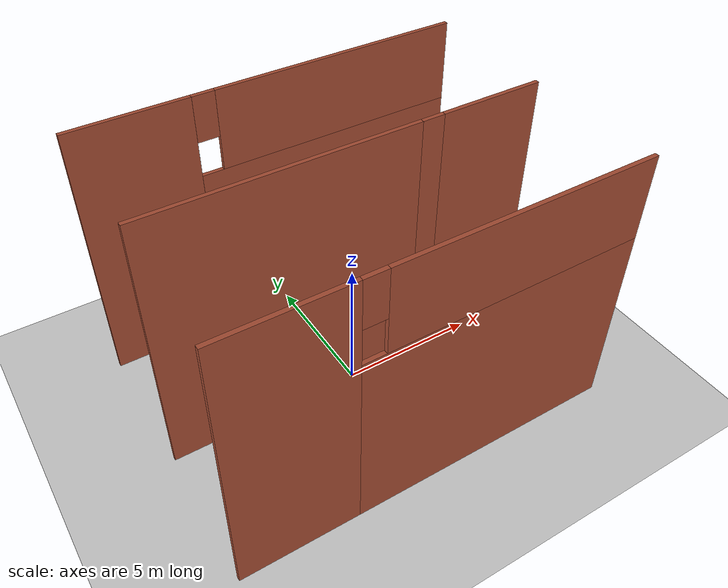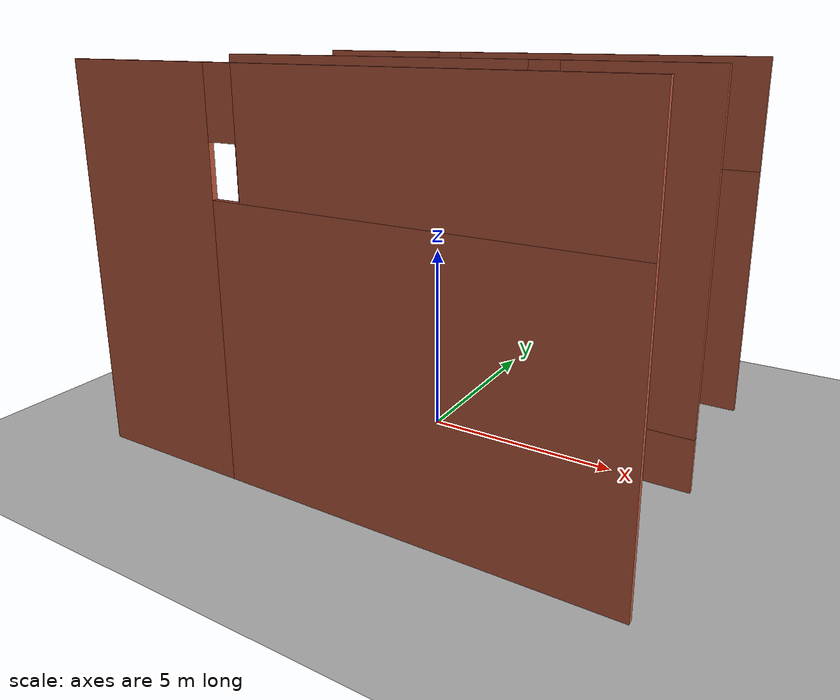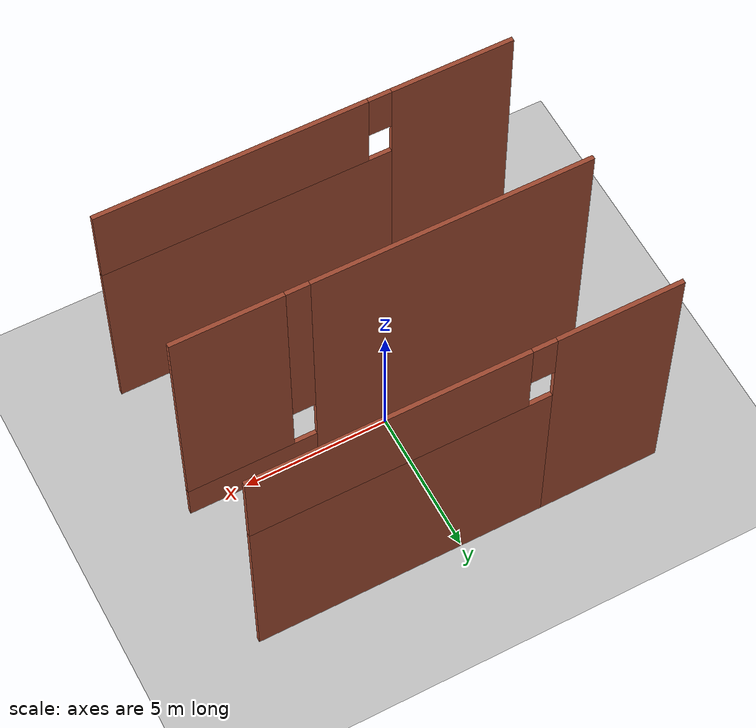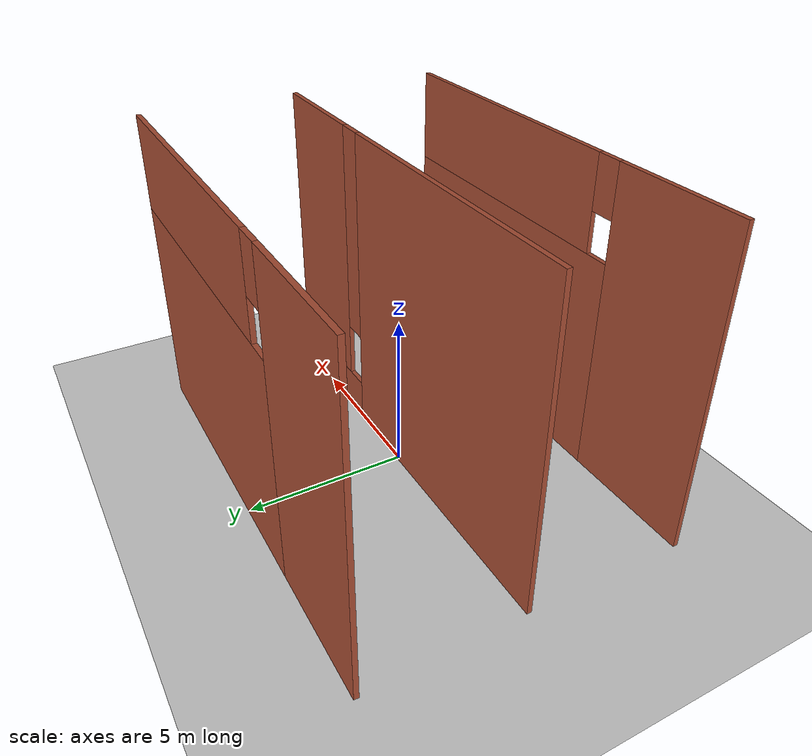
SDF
<?xml version='1.0'?>
<sdf version='1.6'>
  <world name="default">
    <include>
      <uri>model://ground_plane</uri>
    </include>

    <scene>
      <ambient>0.5 0.5 0.5 1</ambient>
      <background>0.5 0.5 0.5 1</background>
      <shadows>false</shadows>
    </scene>

    <!-- Only one ROS interface plugin is required per world, as any other plugin can connect a Gazebo
         topic to a ROS topic (or vise versa). -->
    <plugin name="ros_interface_plugin" filename="librotors_gazebo_ros_interface_plugin.so"/>

    <spherical_coordinates>
      <surface_model>EARTH_WGS84</surface_model>
      <latitude_deg>47.3667</latitude_deg>
      <longitude_deg>8.5500</longitude_deg>
      <elevation>500.0</elevation>
      <heading_deg>0</heading_deg>
    </spherical_coordinates>

    <physics type="ode">
      <gravity>0 0 -9.8</gravity>
      <ode>
        <solver>
          <type>quick</type>
          <iters>10</iters>
          <sor>1.3</sor>
        </solver>
        <constraints>
          <cfm>0.0</cfm>
          <erp>0.2</erp>
          <contact_max_correcting_vel>100.0</contact_max_correcting_vel>
          <contact_surface_layer>0.001</contact_surface_layer>
        </constraints>
      </ode>
      <real_time_update_rate>1000</real_time_update_rate>
      <max_step_size>0.001</max_step_size>
      <real_time_factor>1</real_time_factor>
    </physics>

    <light type="directional" name="my_light">
      <pose>0 0 30 0 0 0</pose>
      <diffuse>.5 .5 .5 1</diffuse>
      <specular>.1 .1 .1 1</specular>
      <attenuation>
        <range>200</range>
      </attenuation>
      <direction>0 0 -1</direction>
      <cast_shadows>false</cast_shadows>
    </light>

    <model name='narrow_long_hole_70cm_two_wall_wide'>
      <pose frame=''>0 0 0 0 -0 0</pose>

      <link name='Wall_2'>
        <pose frame=''>0 -5 0 0 -0 0</pose>
        <visual name='Wall_2_Visual_0'>
          <pose frame=''>-4.9625 0 5 0 -0 0</pose>
          <geometry>
            <box>
              <size>4.225 0.15 10</size>
            </box>
          </geometry>
          <material>
            <script>
              <uri>file://media/materials/scripts/gazebo.material</uri>
              <name>Gazebo/Bricks</name>
            </script>
            <ambient>1 1 1 1</ambient>
          </material>
        </visual>
        <collision name='Wall_2_Collision_0'>
          <geometry>
            <box>
              <size>4.225 0.15 10</size>
            </box>
          </geometry>
          <pose frame=''>-4.9625 0 5 0 -0 0</pose>
        </collision>

        <visual name='Wall_2_Visual_1'>
          <pose frame=''>2.1125 0 3.5 0 -0 0</pose>
          <geometry>
            <box>
              <size>9.925 0.15 7</size>
            </box>
          </geometry>
          <material>
            <script>
              <uri>file://media/materials/scripts/gazebo.material</uri>
              <name>Gazebo/Bricks</name>
            </script>
            <ambient>1 1 1 1</ambient>
          </material>
        </visual>
        <collision name='Wall_2_Collision_1'>
          <geometry>
            <box>
              <size>9.925 0.15 7</size>
            </box>
          </geometry>
          <pose frame=''>2.1125 0 3.5 0 -0 0</pose>
        </collision>

        <visual name='Wall_2_Visual_2'>
          <pose frame=''>2.5125 0 8.5 0 -0 0</pose>
          <geometry>
            <box>
              <size>9.125 0.15 3</size>
            </box>
          </geometry>
          <material>
            <script>
              <uri>file://media/materials/scripts/gazebo.material</uri>
              <name>Gazebo/Bricks</name>
            </script>
            <ambient>1 1 1 1</ambient>
          </material>
        </visual>
        <collision name='Wall_2_Collision_2'>
          <geometry>
            <box>
              <size>9.125 0.15 3</size>
            </box>
          </geometry>
          <pose frame=''>2.5125 0 8.5 0 -0 0</pose>
        </collision>

        <visual name='Wall_2_Visual_3'>
          <pose frame=''>-2.45 0 9.15 0 -0 0</pose>
          <geometry>
            <box>
              <size>0.8 0.15 1.7</size>
            </box>
          </geometry>
          <material>
            <script>
              <uri>file://media/materials/scripts/gazebo.material</uri>
              <name>Gazebo/Bricks</name>
            </script>
            <ambient>1 1 1 1</ambient>
          </material>
        </visual>
        <collision name='Wall_2_Collision_3'>
          <geometry>
            <box>
              <size>0.8 0.15 1.7</size>
            </box>
          </geometry>
          <pose frame=''>-2.45 0 9.15 0 -0 0</pose>
        </collision>
      </link>

      <link name='Wall_5'>
        <pose frame=''>0 0 0 0 -0 0</pose>
        <visual name='Wall_5_Visual_0'>
          <pose frame=''>-2.2625 0 5 0 -0 0</pose>
          <geometry>
            <box>
              <size>9.475 0.15 10</size>
            </box>
          </geometry>
          <material>
            <script>
              <uri>file://media/materials/scripts/gazebo.material</uri>
              <name>Gazebo/Bricks</name>
            </script>
            <ambient>1 1 1 1</ambient>
          </material>
        </visual>
        <collision name='Wall_5_Collision_0'>
          <geometry>
            <box>
              <size>9.475 0.15 10</size>
            </box>
          </geometry>
          <pose frame=''>-2.2625 0 5 0 -0 0</pose>
        </collision>
        <visual name='Wall_5_Visual_1'>
          <pose frame=''>4.7375 0 0.7 0 -0 0</pose>
          <geometry>
            <box>
              <size>4.525 0.15 1.4</size>
            </box>
          </geometry>
          <material>
            <script>
              <uri>file://media/materials/scripts/gazebo.material</uri>
              <name>Gazebo/Bricks</name>
            </script>
            <ambient>1 1 1 1</ambient>
          </material>
        </visual>
        <collision name='Wall_5_Collision_1'>
          <geometry>
            <box>
              <size>4.525 0.15 1.4</size>
            </box>
          </geometry>
          <pose frame=''>4.7375 0 0.7 0 -0 0</pose>
        </collision>
        <visual name='Wall_5_Visual_2'>
          <pose frame=''>5.1375 0 5.7 0 -0 0</pose>
          <geometry>
            <box>
              <size>3.725 0.15 8.6</size>
            </box>
          </geometry>
          <material>
            <script>
              <uri>file://media/materials/scripts/gazebo.material</uri>
              <name>Gazebo/Bricks</name>
            </script>
            <ambient>1 1 1 1</ambient>
          </material>
        </visual>
        <collision name='Wall_5_Collision_2'>
          <geometry>
            <box>
              <size>3.725 0.15 8.6</size>
            </box>
          </geometry>
          <pose frame=''>5.1375 0 5.7 0 -0 0</pose>
        </collision>
        <visual name='Wall_5_Visual_3'>
          <pose frame=''>2.875 0 6.6 0 -0 0</pose>
          <geometry>
            <box>
              <size>0.8 0.15 6.8</size>
            </box>
          </geometry>
          <material>
            <script>
              <uri>file://media/materials/scripts/gazebo.material</uri>
              <name>Gazebo/Bricks</name>
            </script>
            <ambient>1 1 1 1</ambient>
          </material>
        </visual>
        <collision name='Wall_5_Collision_3'>
          <geometry>
            <box>
              <size>0.8 0.15 6.8</size>
            </box>
          </geometry>
          <pose frame=''>2.875 0 6.6 0 -0 0</pose>
        </collision>
      </link>

      <link name='Wall_4'>
        <pose frame=''>0 5 0 0 -0 0</pose>
        <visual name='Wall_4_Visual_0'>
          <pose frame=''>-4.9625 0 5 0 -0 0</pose>
          <geometry>
            <box>
              <size>4.225 0.15 10</size>
            </box>
          </geometry>
          <material>
            <script>
              <uri>file://media/materials/scripts/gazebo.material</uri>
              <name>Gazebo/Bricks</name>
            </script>
            <ambient>1 1 1 1</ambient>
          </material>
        </visual>
        <collision name='Wall_4_Collision_0'>
          <geometry>
            <box>
              <size>4.225 0.15 10</size>
            </box>
          </geometry>
          <pose frame=''>-4.9625 0 5 0 -0 0</pose>
        </collision>

        <visual name='Wall_4_Visual_1'>
          <pose frame=''>2.1125 0 3.5 0 -0 0</pose>
          <geometry>
            <box>
              <size>9.925 0.15 7</size>
            </box>
          </geometry>
          <material>
            <script>
              <uri>file://media/materials/scripts/gazebo.material</uri>
              <name>Gazebo/Bricks</name>
            </script>
            <ambient>1 1 1 1</ambient>
          </material>
        </visual>
        <collision name='Wall_4_Collision_1'>
          <geometry>
            <box>
              <size>9.925 0.15 7</size>
            </box>
          </geometry>
          <pose frame=''>2.1125 0 3.5 0 -0 0</pose>
        </collision>

        <visual name='Wall_4_Visual_2'>
          <pose frame=''>2.5125 0 8.5 0 -0 0</pose>
          <geometry>
            <box>
              <size>9.125 0.15 3</size>
            </box>
          </geometry>
          <material>
            <script>
              <uri>file://media/materials/scripts/gazebo.material</uri>
              <name>Gazebo/Bricks</name>
            </script>
            <ambient>1 1 1 1</ambient>
          </material>
        </visual>
        <collision name='Wall_4_Collision_2'>
          <geometry>
            <box>
              <size>9.125 0.15 3</size>
            </box>
          </geometry>
          <pose frame=''>2.5125 0 8.5 0 -0 0</pose>
        </collision>

        <visual name='Wall_4_Visual_3'>
          <pose frame=''>-2.45 0 9.15 0 -0 0</pose>
          <geometry>
            <box>
              <size>0.8 0.15 1.7</size>
            </box>
          </geometry>
          <material>
            <script>
              <uri>file://media/materials/scripts/gazebo.material</uri>
              <name>Gazebo/Bricks</name>
            </script>
            <ambient>1 1 1 1</ambient>
          </material>
        </visual>
        <collision name='Wall_4_Collision_3'>
          <geometry>
            <box>
              <size>0.8 0.15 1.7</size>
            </box>
          </geometry>
          <pose frame=''>-2.45 0 9.15 0 -0 0</pose>
        </collision>
      </link>

      <static>1</static>
    </model>
  </world>
</sdf>
